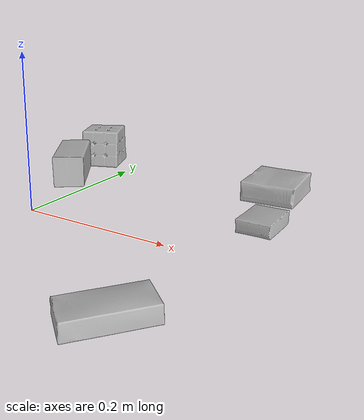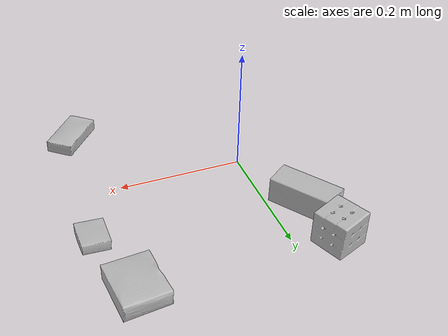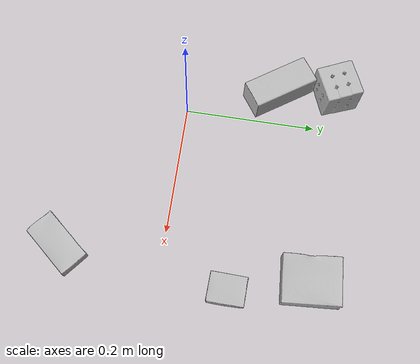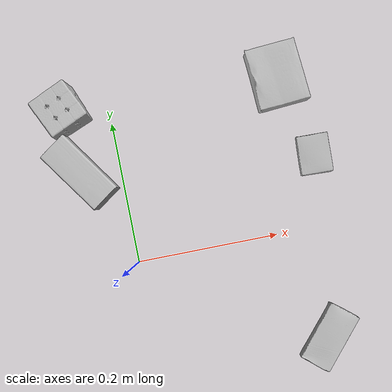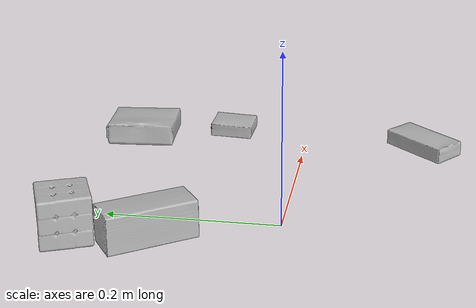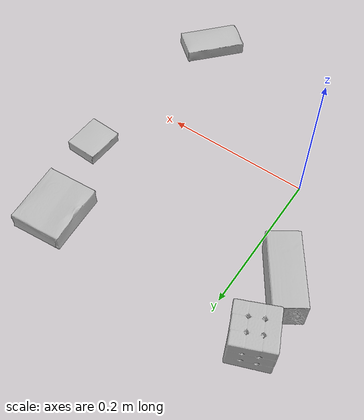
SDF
<sdf version="1.4">
  <world name="default">
    <light name="light1" type="point">
      <pose>0 0 1 0 0 0</pose>
      <diffuse>3 3 3 1</diffuse>
      <specular>3 3 3 1</specular>
    </light>
    <light name="light2" type="point">
      <pose>0 0.5 2 0 0 0</pose>
      <diffuse>1 1 1 1</diffuse>
      <specular>1 1 1 1</specular>
    </light>
    <light name="light3" type="point">
      <pose>0 0.5 2 0 0 0</pose>
      <diffuse>3 3 3 1</diffuse>
      <specular>3 3 3 1</specular>
    </light>
    <scene>
      <ambient>0.7 0.7 0.7</ambient>
    </scene>
    <model name="box1">
      <link name="link_box1">
        <collision name="default">
          <geometry>
            <mesh>
              <uri>model://gelatin_box/collision_meshes/collision.obj</uri>
              <scale>1.0 1.0 1.0</scale>
            </mesh>
          </geometry>
          <surface>
            <friction>
              <ode>
                <mu>0.5</mu>
                <mu2>0.5</mu2>
              </ode>
            </friction>
          <contact>
        <ode>
            <max_vel>0</max_vel>
            <min_depth>0.0001</min_depth>
            <kp>1e8</kp>
        </ode>
    </contact></surface>
        </collision>
        <visual name="default">
          <geometry>
            <mesh>
              <uri>model://gelatin_box/visual_meshes/visual.dae</uri>
              <scale>1.0 1.0 1.0</scale>
            </mesh>
          </geometry>
        </visual>
        <inertial>
          <mass>0.15228882431983948</mass>
          <pose>0.0004319618456065655 0.00011156871914863586 -0.0003640321083366871 -0.00105037218966889 -0.004755816826754503 0.0164405576082189</pose>
          <inertia>
            <ixx>0.00010750349</ixx>
            <iyy>7.678918e-05</iyy>
            <izz>0.00016364428</izz>
            <ixy>0</ixy>
            <ixz>0</ixz>
            <iyz>0</iyz>
          </inertia>
        </inertial>
      </link>
      <pose>0.24107423424720764 0.21966254711151123 0.01516831573098898 0.005597443795781801 -0.007304569300306905 -3.074132988288737</pose>
    </model>
    <model name="box2">
      <link name="link_box2">
        <collision name="default">
          <geometry>
            <mesh>
              <uri>model://rubiks_cube/collision_meshes/collision.obj</uri>
              <scale>1.0 1.0 1.0</scale>
            </mesh>
          </geometry>
          <surface>
            <friction>
              <ode>
                <mu>0.5</mu>
                <mu2>0.5</mu2>
              </ode>
            </friction>
          <contact>
        <ode>
            <max_vel>0</max_vel>
            <min_depth>0.0001</min_depth>
            <kp>1e8</kp>
        </ode>
    </contact></surface>
        </collision>
        <visual name="default">
          <geometry>
            <mesh>
              <uri>model://rubiks_cube/visual_meshes/visual.dae</uri>
              <scale>1.0 1.0 1.0</scale>
            </mesh>
          </geometry>
        </visual>
        <inertial>
          <mass>0.18699690699577332</mass>
          <pose>2.6721041649580002e-05 5.2569666877388954e-05 -7.264316082000732e-06 -0.054672785544912415 -0.09814058570479768 -0.03445363054661819</pose>
          <inertia>
            <ixx>0.00010332834</ixx>
            <iyy>0.00010284647</iyy>
            <izz>0.000104184575</izz>
            <ixy>0</ixy>
            <ixz>0</ixz>
            <iyz>0</iyz>
          </inertia>
        </inertial>
      </link>
      <pose>-0.06189914047718048 0.22647801041603088 0.02867896854877472 -2.309995524636153e-06 -4.1372736908119274e-07 -1.156271931733792</pose>
    </model>
    <model name="box3">
      <link name="link_box3">
        <collision name="default">
          <geometry>
            <mesh>
              <uri>model://pudding_box/collision_meshes/collision.obj</uri>
              <scale>0.5 0.5 0.5</scale>
            </mesh>
          </geometry>
          <surface>
            <friction>
              <ode>
                <mu>0.5</mu>
                <mu2>0.5</mu2>
              </ode>
            </friction>
          <contact>
        <ode>
            <max_vel>0</max_vel>
            <min_depth>0.0001</min_depth>
            <kp>1e8</kp>
        </ode>
    </contact></surface>
        </collision>
        <visual name="default">
          <geometry>
            <mesh>
              <uri>model://pudding_box/visual_meshes/visual.dae</uri>
              <scale>0.5 0.5 0.5</scale>
            </mesh>
          </geometry>
        </visual>
        <inertial>
          <mass>0.04129739850759506</mass>
          <pose>0.00024474109522998333 0.00040339428232982755 -0.0002594413817860186 0.005213100432551209 -0.006603796827212886 0.020079819580048088</pose>
          <inertia>
            <ixx>1.1671145e-05</ixx>
            <iyy>7.852431e-06</iyy>
            <izz>1.7235501e-05</izz>
            <ixy>0</ixy>
            <ixz>0</ixz>
            <iyz>0</iyz>
          </inertia>
        </inertial>
      </link>
      <pose>0.27183565497398376 0.10157434642314911 0.00986290443688631 0.02234847840652114 -0.011391742397626468 -0.03099494397335583</pose>
    </model>
    <model name="box4">
      <link name="link_box4">
        <collision name="default">
          <geometry>
            <mesh>
              <uri>model://sugar_box/collision_meshes/collision.obj</uri>
              <scale>0.5 0.5 0.5</scale>
            </mesh>
          </geometry>
          <surface>
            <friction>
              <ode>
                <mu>0.5</mu>
                <mu2>0.5</mu2>
              </ode>
            </friction>
          <contact>
        <ode>
            <max_vel>0</max_vel>
            <min_depth>0.0001</min_depth>
            <kp>1e8</kp>
        </ode>
    </contact></surface>
        </collision>
        <visual name="default">
          <geometry>
            <mesh>
              <uri>model://sugar_box/visual_meshes/visual.dae</uri>
              <scale>0.5 0.5 0.5</scale>
            </mesh>
          </geometry>
        </visual>
        <inertial>
          <mass>0.09136254340410233</mass>
          <pose>0.0005171863595023751 1.924554817378521e-05 -0.00018182402709499002 -0.00040462606744182556 0.0010506635219056535 0.0026153790218759383</pose>
          <inertia>
            <ixx>1.9030753e-05</ixx>
            <iyy>6.15113e-05</iyy>
            <izz>7.363638e-05</izz>
            <ixy>0</ixy>
            <ixz>0</ixz>
            <iyz>0</iyz>
          </inertia>
        </inertial>
      </link>
      <pose>0.24296298623085022 -0.1544906497001648 0.011399307288229465 0.0007753965272877472 -0.023433272556683444 0.8668435157471903</pose>
    </model>
    <model name="box5">
      <link name="link_box5">
        <collision name="default">
          <geometry>
            <mesh>
              <uri>model://wood_block/collision_meshes/collision.obj</uri>
              <scale>0.5 0.5 0.5</scale>
            </mesh>
          </geometry>
          <surface>
            <friction>
              <ode>
                <mu>0.5</mu>
                <mu2>0.5</mu2>
              </ode>
            </friction>
          <contact>
        <ode>
            <max_vel>0</max_vel>
            <min_depth>0.0001</min_depth>
            <kp>1e8</kp>
        </ode>
    </contact></surface>
        </collision>
        <visual name="default">
          <geometry>
            <mesh>
              <uri>model://wood_block/visual_meshes/visual.dae</uri>
              <scale>0.5 0.5 0.5</scale>
            </mesh>
          </geometry>
        </visual>
        <inertial>
          <mass>0.2591090798377991</mass>
          <pose>-2.9066577553749084e-06 -0.00028540470520965755 0.00013204290007706732 -0.05220937491622274 -0.005192696068464721 -0.006861378365732138</pose>
          <inertia>
            <ixx>8.6681786e-05</ixx>
            <iyy>0.00027382775</iyy>
            <izz>0.0002728035</izz>
            <ixy>0</ixy>
            <ixz>0</ixz>
            <iyz>0</iyz>
          </inertia>
        </inertial>
      </link>
      <pose>-0.05300002172589302 0.1384751945734024 0.022629261016845703 -0.005208361249889699 0.005718792354782643 2.177374310304913</pose>
    </model>
  <physics type="ode">
      <max_contacts>50</max_contacts>
      <ode>
        <solver>
          <type>quick</type>
          <iters>75</iters>
        </solver>
        <constraints>
          <contact_max_correcting_vel>0</contact_max_correcting_vel>
          <contact_surface_layer>0</contact_surface_layer>
        </constraints>
      </ode>
    </physics></world>
</sdf>
